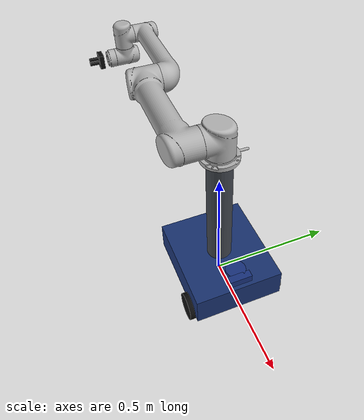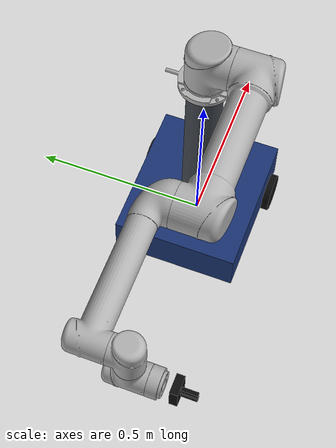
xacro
<?xml version="1.0"?>
<robot xmlns:xacro="http://www.ros.org/wiki/xacro" name="mobile_manipulator">

  <!-- ============================== Properties ============================== -->
  <xacro:arg name="enable_camera" default="true"/>

  <!-- 硬件插件二选一：mock = 假硬件（测试用，命令即状态）；gazebo = 真仿真（gz_ros2_control）。
       ⚠️ 默认必须是 mock —— 那才是 `colcon test` 走的那条路。 -->
  <xacro:arg name="hardware" default="mock"/>
  <!-- gazebo 模式下交给 gz_ros2_control 的 gazebo 插件读的控制器配置。
       ⚠️ 默认**留空**、由 launch 传绝对路径 —— 这里写 $(find robot_description) 会在
       构建这个包自己时抛 PackageNotFoundError（那时它还不在 ament 索引里）。 -->
  <xacro:arg name="ros2_control_params" default=""/>

  <xacro:property name="PI" value="3.14159265359"/>
  <xacro:property name="base_length" value="0.42"/>
  <xacro:property name="base_width" value="0.36"/>
  <xacro:property name="base_height" value="0.12"/>
  <xacro:property name="wheel_radius" value="0.055"/>
  <xacro:property name="wheel_width" value="0.03"/>
  <xacro:property name="wheel_offset_x" value="0.13"/>
  <xacro:property name="wheel_offset_y" value="0.185"/>

  <!-- 腕部后两个自由度各占一小段。arm 组靠它们凑够 **6 个 revolute** ——
       KDL 才能解完整 6 维位姿（少一个就退化成欠自由度，解不出带姿态的目标）。 -->
  <xacro:property name="wrist_roll_length" value="0.02"/>

  <!-- ================================ Inertia =============================== -->
  <xacro:macro name="box_inertial" params="mass x y z">
    <inertial>
      <mass value="${mass}"/>
      <origin xyz="0 0 0" rpy="0 0 0"/>
      <inertia ixx="${mass * (y * y + z * z) / 12.0}" ixy="0.0" ixz="0.0"
               iyy="${mass * (x * x + z * z) / 12.0}" iyz="0.0"
               izz="${mass * (x * x + y * y) / 12.0}"/>
    </inertial>
  </xacro:macro>

  <xacro:macro name="cylinder_inertial" params="mass radius length">
    <inertial>
      <mass value="${mass}"/>
      <origin xyz="0 0 0" rpy="0 0 0"/>
      <inertia ixx="${mass * (3.0 * radius * radius + length * length) / 12.0}" ixy="0.0" ixz="0.0"
               iyy="${mass * (3.0 * radius * radius + length * length) / 12.0}" iyz="0.0"
               izz="${mass * radius * radius / 2.0}"/>
    </inertial>
  </xacro:macro>

  <!-- ============================== Base =================================== -->
  <link name="base_footprint"/>
  <joint name="base_footprint_joint" type="fixed">
    <parent link="base_footprint"/>
    <child link="base_link"/>
    <origin xyz="0 0 ${wheel_radius}" rpy="0 0 0"/>
  </joint>

  <link name="base_link">
    <visual>
      <geometry>
        <box size="${base_length} ${base_width} ${base_height}"/>
      </geometry>
      <material name="grey">
        <color rgba="0.10 0.20 0.45 1.0"/>
      </material>
    </visual>
    <collision>
      <geometry>
        <box size="${base_length} ${base_width} ${base_height}"/>
      </geometry>
    </collision>
    <xacro:box_inertial mass="12.0" x="${base_length}" y="${base_width}" z="${base_height}"/>
  </link>

  <!-- ============================== Wheels ================================= -->
  <xacro:macro name="wheel" params="prefix y">
    <link name="${prefix}_wheel_link">
      <visual>
        <origin xyz="0 0 0" rpy="${PI / 2.0} 0 0"/>
        <geometry>
          <cylinder radius="${wheel_radius}" length="${wheel_width}"/>
        </geometry>
        <material name="black">
          <color rgba="0.05 0.05 0.05 1.0"/>
        </material>
      </visual>
      <collision>
        <origin xyz="0 0 0" rpy="${PI / 2.0} 0 0"/>
        <geometry>
          <cylinder radius="${wheel_radius}" length="${wheel_width}"/>
        </geometry>
      </collision>
      <xacro:cylinder_inertial mass="0.6" radius="${wheel_radius}" length="${wheel_width}"/>
    </link>
    <joint name="${prefix}_wheel_joint" type="continuous">
      <parent link="base_link"/>
      <child link="${prefix}_wheel_link"/>
      <origin xyz="${wheel_offset_x} ${y} ${-base_height / 2.0}" rpy="0 0 0"/>
      <axis xyz="0 1 0"/>
      <dynamics damping="0.05" friction="0.0"/>
    </joint>
  </xacro:macro>

  <xacro:wheel prefix="left" y="${wheel_offset_y}"/>
  <xacro:wheel prefix="right" y="${-wheel_offset_y}"/>

  <link name="caster_link">
    <visual>
      <geometry>
        <sphere radius="0.025"/>
      </geometry>
      <material name="black">
        <color rgba="0.05 0.05 0.05 1.0"/>
      </material>
    </visual>
    <collision>
      <geometry>
        <sphere radius="0.025"/>
      </geometry>
    </collision>
    <inertial>
      <mass value="0.2"/>
      <inertia ixx="0.0001" ixy="0.0" ixz="0.0" iyy="0.0001" iyz="0.0" izz="0.0001"/>
    </inertial>
  </link>
  <joint name="caster_joint" type="fixed">
    <parent link="base_link"/>
    <child link="caster_link"/>
    <origin xyz="${-wheel_offset_x - 0.02} 0 ${-base_height / 2.0}" rpy="0 0 0"/>
  </joint>

  <!-- ============================== Sensors ================================ -->
  <link name="laser_link">
    <visual>
      <geometry>
        <cylinder radius="0.04" length="0.04"/>
      </geometry>
      <material name="dark_blue">
        <color rgba="0.1 0.2 0.5 1.0"/>
      </material>
    </visual>
    <collision>
      <geometry>
        <cylinder radius="0.04" length="0.04"/>
      </geometry>
    </collision>
    <xacro:cylinder_inertial mass="0.15" radius="0.04" length="0.04"/>
  </link>
  <joint name="laser_joint" type="fixed">
    <parent link="base_link"/>
    <child link="laser_link"/>
    <!-- Front-top corner: as far from the arm as the base allows, so the scan
         sees as little of the robot's own body as possible. -->
    <origin xyz="${base_length / 2.0 - 0.05} 0 ${base_height / 2.0 + 0.045}" rpy="0 0 0"/>
  </joint>

  <link name="imu_link">
    <inertial>
      <mass value="0.05"/>
      <inertia ixx="1e-5" ixy="0.0" ixz="0.0" iyy="1e-5" iyz="0.0" izz="1e-5"/>
    </inertial>
  </link>
  <joint name="imu_joint" type="fixed">
    <parent link="base_link"/>
    <child link="imu_link"/>
    <origin xyz="0.0 0.0 0.03" rpy="0 0 0"/>
  </joint>

  <link name="camera_link">
    <visual>
      <geometry>
        <box size="0.03 0.09 0.03"/>
      </geometry>
      <material name="dark_blue">
        <color rgba="0.1 0.2 0.5 1.0"/>
      </material>
    </visual>
    <collision>
      <geometry>
        <box size="0.03 0.09 0.03"/>
      </geometry>
    </collision>
    <xacro:box_inertial mass="0.08" x="0.03" y="0.09" z="0.03"/>
  </link>
  <joint name="camera_joint" type="fixed">
    <parent link="base_link"/>
    <child link="camera_link"/>
    <origin xyz="${base_length / 2.0 - 0.01} 0 ${base_height / 2.0 + 0.05}" rpy="0 0 0"/>
  </joint>

  <!-- 光学帧：ROS 约定图像在 z 朝前 / x 朝右 / y 朝下的坐标系里，与 body 系差一个固定旋转。
       ⚠️ 它必须由 URDF 提供（fixed joint ⇒ 由 robot_state_publisher 发到 /tf_static）：
       少了它，消费方拿 TF 投影深度图会得到"错误但看起来合理"的结果。 -->
  <link name="camera_optical_frame"/>
  <joint name="camera_optical_joint" type="fixed">
    <parent link="camera_link"/>
    <child link="camera_optical_frame"/>
    <origin xyz="0 0 0" rpy="-1.57079632679 0 -1.57079632679"/>
  </joint>

  <!-- =============================== Arm =================================== -->
  <link name="arm_base_link">
    <visual>
      <origin xyz="0 0 0" rpy="0 0 ${PI}"/>
      <geometry>
        <mesh filename="package://ur_description/meshes/ur5/visual/base.dae"/>
      </geometry>
      <material name="ur_light_grey">
        <color rgba="0.7 0.7 0.7 1.0"/>
      </material>
    </visual>
    <collision>
      <origin xyz="0 0 0" rpy="0 0 ${PI}"/>
      <geometry>
        <mesh filename="package://ur_description/meshes/ur5/collision/base.stl"/>
      </geometry>
    </collision>
    <xacro:cylinder_inertial mass="4.0" radius="0.06" length="0.06"/>
  </link>

  <!-- 手臂基座：UR5 在零位是**横躺**的，直接装在底盘顶面必然穿模
       （MoveIt 的碰撞检查当场就会把零位判成自碰撞）。真实移动机械臂都这么抬一段。 -->
  <link name="arm_pedestal_link">
    <visual>
      <origin xyz="0 0 0.25" rpy="0 0 0"/>
      <geometry>
        <cylinder radius="0.05" length="0.50"/>
      </geometry>
      <material name="dark_grey">
        <color rgba="0.25 0.27 0.30 1.0"/>
      </material>
    </visual>
    <collision>
      <origin xyz="0 0 0.25" rpy="0 0 0"/>
      <geometry>
        <cylinder radius="0.05" length="0.50"/>
      </geometry>
    </collision>
    <xacro:cylinder_inertial mass="2.2" radius="0.05" length="0.50"/>
  </link>

  <joint name="arm_pedestal_joint" type="fixed">
    <parent link="base_link"/>
    <child link="arm_pedestal_link"/>
    <origin xyz="0 0 ${base_height / 2.0}" rpy="0 0 0"/>
  </joint>

  <joint name="arm_base_joint" type="fixed">
    <parent link="arm_pedestal_link"/>
    <child link="arm_base_link"/>
    <origin xyz="0 0 0.50" rpy="0 0 0"/>
  </joint>

  <link name="shoulder_link">
    <visual>
      <origin xyz="0 0 0" rpy="0 0 ${PI}"/>
      <geometry>
        <mesh filename="package://ur_description/meshes/ur5/visual/shoulder.dae"/>
      </geometry>
      <material name="ur_light_grey">
        <color rgba="0.7 0.7 0.7 1.0"/>
      </material>
    </visual>
    <collision>
      <origin xyz="0 0 0" rpy="0 0 ${PI}"/>
      <geometry>
        <mesh filename="package://ur_description/meshes/ur5/collision/shoulder.stl"/>
      </geometry>
    </collision>
    <xacro:cylinder_inertial mass="3.7" radius="0.06" length="0.12"/>
  </link>

  <joint name="shoulder_pan_joint" type="revolute">
    <parent link="arm_base_link"/>
    <child link="shoulder_link"/>
    <origin xyz="0 0 0.089159" rpy="0 0 0"/>
    <axis xyz="0 0 1"/>
    <limit lower="-6.283185307" upper="6.283185307" effort="150.0" velocity="3.14159265"/>
  </joint>

  <link name="upper_arm_link">
    <visual>
      <origin xyz="0 0 0.13585" rpy="${PI / 2.0} 0 ${-PI / 2.0}"/>
      <geometry>
        <mesh filename="package://ur_description/meshes/ur5/visual/upperarm.dae"/>
      </geometry>
      <material name="ur_light_grey">
        <color rgba="0.7 0.7 0.7 1.0"/>
      </material>
    </visual>
    <collision>
      <origin xyz="0 0 0.13585" rpy="${PI / 2.0} 0 ${-PI / 2.0}"/>
      <geometry>
        <mesh filename="package://ur_description/meshes/ur5/collision/upperarm.stl"/>
      </geometry>
    </collision>
    <xacro:cylinder_inertial mass="8.393" radius="0.054" length="0.4"/>
  </link>

  <joint name="shoulder_lift_joint" type="revolute">
    <parent link="shoulder_link"/>
    <child link="upper_arm_link"/>
    <origin xyz="0 0 0" rpy="${PI / 2.0} 0 0"/>
    <axis xyz="0 0 1"/>
    <limit lower="-6.283185307" upper="6.283185307" effort="150.0" velocity="3.14159265"/>
  </joint>

  <link name="forearm_link">
    <visual>
      <origin xyz="0 0 0.0165" rpy="${PI / 2.0} 0 ${-PI / 2.0}"/>
      <geometry>
        <mesh filename="package://ur_description/meshes/ur5/visual/forearm.dae"/>
      </geometry>
      <material name="ur_light_grey">
        <color rgba="0.7 0.7 0.7 1.0"/>
      </material>
    </visual>
    <collision>
      <origin xyz="0 0 0.0165" rpy="${PI / 2.0} 0 ${-PI / 2.0}"/>
      <geometry>
        <mesh filename="package://ur_description/meshes/ur5/collision/forearm.stl"/>
      </geometry>
    </collision>
    <xacro:cylinder_inertial mass="2.33" radius="0.04" length="0.39"/>
  </link>

  <joint name="elbow_joint" type="revolute">
    <parent link="upper_arm_link"/>
    <child link="forearm_link"/>
    <origin xyz="-0.425 0 0" rpy="0 0 0"/>
    <axis xyz="0 0 1"/>
    <!-- UR 官方把肘关节人为限制在 ±180°（超过之后肩部会挡住，规划空间会分裂） -->
    <limit lower="-3.14159265" upper="3.14159265" effort="150.0" velocity="3.14159265"/>
  </joint>

  <link name="wrist_link">
    <visual>
      <origin xyz="0 0 -0.093" rpy="${PI / 2.0} 0 0"/>
      <geometry>
        <mesh filename="package://ur_description/meshes/ur5/visual/wrist1.dae"/>
      </geometry>
      <material name="ur_light_grey">
        <color rgba="0.7 0.7 0.7 1.0"/>
      </material>
    </visual>
    <collision>
      <origin xyz="0 0 -0.093" rpy="${PI / 2.0} 0 0"/>
      <geometry>
        <mesh filename="package://ur_description/meshes/ur5/collision/wrist1.stl"/>
      </geometry>
    </collision>
    <xacro:cylinder_inertial mass="1.219" radius="0.045" length="0.09"/>
  </link>

  <joint name="wrist_joint" type="revolute">
    <parent link="forearm_link"/>
    <child link="wrist_link"/>
    <origin xyz="-0.39225 0 0.10915" rpy="0 0 0"/>
    <axis xyz="0 0 1"/>
    <limit lower="-6.283185307" upper="6.283185307" effort="28.0" velocity="3.14159265"/>
  </joint>

  <link name="wrist_pitch_link">
    <visual>
      <origin xyz="0 0 -0.095" rpy="0 0 0"/>
      <geometry>
        <mesh filename="package://ur_description/meshes/ur5/visual/wrist2.dae"/>
      </geometry>
      <material name="ur_light_grey">
        <color rgba="0.7 0.7 0.7 1.0"/>
      </material>
    </visual>
    <collision>
      <origin xyz="0 0 -0.095" rpy="0 0 0"/>
      <geometry>
        <mesh filename="package://ur_description/meshes/ur5/collision/wrist2.stl"/>
      </geometry>
    </collision>
    <xacro:cylinder_inertial mass="1.219" radius="0.045" length="0.09"/>
  </link>

  <joint name="wrist_pitch_joint" type="revolute">
    <parent link="wrist_link"/>
    <child link="wrist_pitch_link"/>
    <origin xyz="0 -0.09465 0" rpy="${PI / 2.0} 0 0"/>
    <axis xyz="0 0 1"/>
    <limit lower="-6.283185307" upper="6.283185307" effort="28.0" velocity="3.14159265"/>
  </joint>

  <link name="wrist_roll_link">
    <visual>
      <origin xyz="0 0 -0.0818" rpy="${PI / 2.0} 0 0"/>
      <geometry>
        <mesh filename="package://ur_description/meshes/ur5/visual/wrist3.dae"/>
      </geometry>
      <material name="ur_light_grey">
        <color rgba="0.7 0.7 0.7 1.0"/>
      </material>
    </visual>
    <collision>
      <origin xyz="0 0 -0.0818" rpy="${PI / 2.0} 0 0"/>
      <geometry>
        <mesh filename="package://ur_description/meshes/ur5/collision/wrist3.stl"/>
      </geometry>
    </collision>
    <xacro:cylinder_inertial mass="0.1879" radius="0.045" length="0.08"/>
  </link>

  <joint name="wrist_roll_joint" type="revolute">
    <parent link="wrist_pitch_link"/>
    <child link="wrist_roll_link"/>
    <origin xyz="0 0.0823 0" rpy="${PI / 2.0} ${PI} ${PI}"/>
    <axis xyz="0 0 1"/>
    <limit lower="-6.283185307" upper="6.283185307" effort="28.0" velocity="3.14159265"/>
  </joint>

  <link name="gripper_base_link">
    <visual>
      <geometry>
        <box size="0.05 0.06 0.02"/>
      </geometry>
      <material name="black">
        <color rgba="0.05 0.05 0.05 1.0"/>
      </material>
    </visual>
    <collision>
      <geometry>
        <box size="0.05 0.06 0.02"/>
      </geometry>
    </collision>
    <xacro:box_inertial mass="0.2" x="0.05" y="0.06" z="0.02"/>
  </link>
  <joint name="gripper_base_joint" type="fixed">
    <parent link="wrist_roll_link"/>
    <child link="gripper_base_link"/>
    <origin xyz="0 0 ${wrist_roll_length + 0.01}" rpy="0 0 0"/>
  </joint>

  <xacro:macro name="finger" params="prefix y">
    <link name="${prefix}_finger_link">
      <visual>
        <origin xyz="0 ${y} 0.02" rpy="0 0 0"/>
        <geometry>
          <box size="0.01 0.012 0.04"/>
        </geometry>
        <material name="black">
          <color rgba="0.05 0.05 0.05 1.0"/>
        </material>
      </visual>
      <collision>
        <origin xyz="0 ${y} 0.02" rpy="0 0 0"/>
        <geometry>
          <box size="0.01 0.012 0.04"/>
        </geometry>
      </collision>
      <xacro:box_inertial mass="0.05" x="0.01" y="0.012" z="0.04"/>
    </link>
  </xacro:macro>

  <xacro:finger prefix="left" y="0.0"/>
  <xacro:finger prefix="right" y="0.0"/>

  <!-- A single prismatic command drives both fingers in opposite directions. -->
  <joint name="gripper_joint" type="prismatic">
    <parent link="gripper_base_link"/>
    <child link="left_finger_link"/>
    <origin xyz="0 0.01 0.01" rpy="0 0 0"/>
    <axis xyz="0 1 0"/>
    <limit lower="0.0" upper="0.03" effort="20.0" velocity="0.1"/>
    <dynamics damping="0.05" friction="0.0"/>
  </joint>
  <joint name="gripper_right_joint" type="fixed">
    <parent link="gripper_base_link"/>
    <child link="right_finger_link"/>
    <origin xyz="0 -0.01 0.01" rpy="0 0 0"/>
  </joint>

  <!-- ============================== Gazebo ================================= -->
  <xacro:macro name="arm_position_controller" params="joint">
    <gazebo>
      <plugin filename="gz-sim-joint-position-controller-system"
              name="gz::sim::systems::JointPositionController">
        <joint_name>${joint}</joint_name>
        <topic>/arm/${joint}/cmd_pos</topic>
        <p_gain>25.0</p_gain>
        <i_gain>0.0</i_gain>
        <d_gain>2.0</d_gain>
      </plugin>
    </gazebo>
  </xacro:macro>

  <!-- 关节状态统一由 controller_manager 的 joint_state_broadcaster 发（含车轮）⇒
       这里不再挂 gz 的 JointStatePublisher：两个发布者会让 /joint_states 出现两套数据。 -->

  <!-- 激光与深度相机是渲染式的，需要世界里的 Sensors 系统提供渲染上下文（见 worlds/sdk_demo.sdf）。 -->

  <!-- ⚠️ 这些 gz 关节位置控制器只在 mock 模式下保留；gazebo 模式下手臂归 ros2_control，
       两份一起放进 Gazebo 会**抢同一个关节**。 -->
  <xacro:unless value="${'$(arg hardware)' == 'gazebo'}">
    <xacro:arm_position_controller joint="shoulder_pan_joint"/>
    <xacro:arm_position_controller joint="shoulder_lift_joint"/>
    <xacro:arm_position_controller joint="elbow_joint"/>
    <xacro:arm_position_controller joint="wrist_joint"/>
    <xacro:arm_position_controller joint="wrist_pitch_joint"/>
    <xacro:arm_position_controller joint="wrist_roll_joint"/>
    <xacro:arm_position_controller joint="gripper_joint"/>
  </xacro:unless>

  <!-- gazebo 模式：这个 gz 插件自己会把 controller_manager 建起来（不用另起 ros2_control_node）。 -->
  <xacro:if value="${'$(arg hardware)' == 'gazebo'}">
    <gazebo>
      <plugin filename="gz_ros2_control-system"
              name="gz_ros2_control::GazeboSimROS2ControlPlugin">
        <parameters>$(arg ros2_control_params)</parameters>
      </plugin>
    </gazebo>
  </xacro:if>

  <gazebo reference="laser_link">
    <sensor name="lidar" type="gpu_lidar">
      <topic>/scan</topic>
      <!-- Override Gazebo's scoped frame name so the message frame matches the
           URDF/TF frame published by robot_state_publisher. -->
      <gz_frame_id>laser_link</gz_frame_id>
      <always_on>true</always_on>
      <update_rate>10.0</update_rate>
      <visualize>false</visualize>
      <lidar>
        <scan>
          <horizontal>
            <samples>360</samples>
            <resolution>1</resolution>
            <min_angle>-3.14159265</min_angle>
            <max_angle>3.14159265</max_angle>
          </horizontal>
        </scan>
        <range>
          <min>0.1</min>
          <max>10.0</max>
          <resolution>0.01</resolution>
        </range>
        <noise>
          <type>gaussian</type>
          <mean>0.0</mean>
          <stddev>0.01</stddev>
        </noise>
      </lidar>
    </sensor>
  </gazebo>

  <gazebo reference="imu_link">
    <sensor name="imu" type="imu">
      <topic>/imu</topic>
      <gz_frame_id>imu_link</gz_frame_id>
      <always_on>true</always_on>
      <update_rate>100.0</update_rate>
    </sensor>
  </gazebo>

  <xacro:if value="$(arg enable_camera)">
  <gazebo reference="camera_link">
    <sensor name="depth_camera" type="depth_camera">
      <topic>/camera/depth</topic>
      <gz_frame_id>camera_link</gz_frame_id>
      <always_on>true</always_on>
      <update_rate>15.0</update_rate>
      <visualize>false</visualize>
      <camera>
        <horizontal_fov>1.047</horizontal_fov>
        <image>
          <width>64</width>
          <height>48</height>
          <format>R_FLOAT32</format>
        </image>
        <clip>
          <near>0.1</near>
          <far>10.0</far>
        </clip>
      </camera>
    </sensor>
  </gazebo>
  </xacro:if>
  <!-- ============================ ros2_control ============================= -->
  <ros2_control name="mobile_manipulator" type="system">
    <hardware>
      <xacro:if value="${'$(arg hardware)' == 'gazebo'}">
        <plugin>gz_ros2_control/GazeboSimSystem</plugin>
      </xacro:if>
      <xacro:unless value="${'$(arg hardware)' == 'gazebo'}">
        <plugin>mock_components/GenericSystem</plugin>
      </xacro:unless>
    </hardware>
    <joint name="shoulder_pan_joint">
      <command_interface name="position"/>
      <state_interface name="position"/>
    </joint>
    <joint name="shoulder_lift_joint">
      <command_interface name="position"/>
      <state_interface name="position"/>
    </joint>
    <joint name="elbow_joint">
      <command_interface name="position"/>
      <state_interface name="position"/>
    </joint>
    <joint name="wrist_joint">
      <command_interface name="position"/>
      <state_interface name="position"/>
    </joint>
    <joint name="wrist_pitch_joint">
      <command_interface name="position"/>
      <state_interface name="position"/>
    </joint>
    <joint name="wrist_roll_joint">
      <command_interface name="position"/>
      <state_interface name="position"/>
    </joint>
    <joint name="gripper_joint">
      <command_interface name="position"/>
      <state_interface name="position"/>
    </joint>
    <!-- 车轮：差速底盘用速度接口；状态给 position（里程计要积分它）+ velocity。 -->
    <joint name="left_wheel_joint">
      <command_interface name="velocity"/>
      <state_interface name="position"/>
      <state_interface name="velocity"/>
    </joint>
    <joint name="right_wheel_joint">
      <command_interface name="velocity"/>
      <state_interface name="position"/>
      <state_interface name="velocity"/>
    </joint>
  </ros2_control>

</robot>
